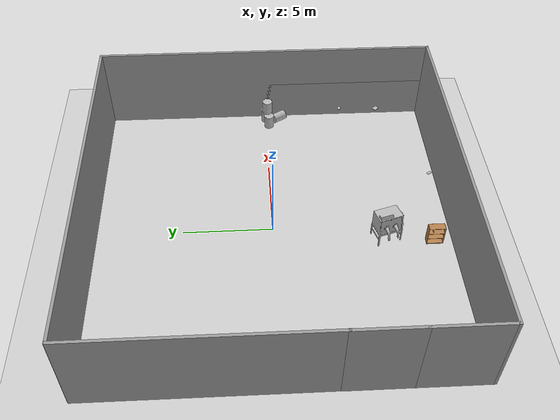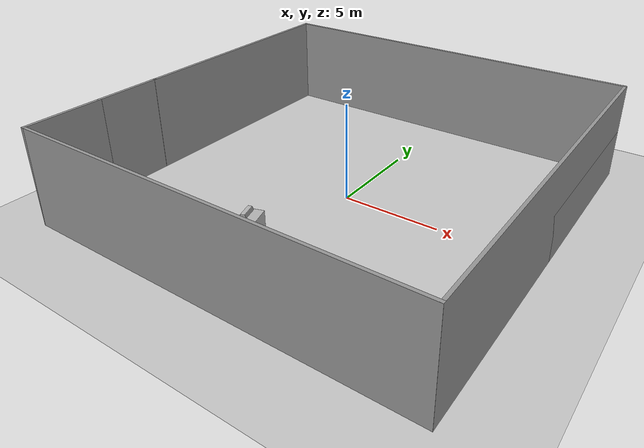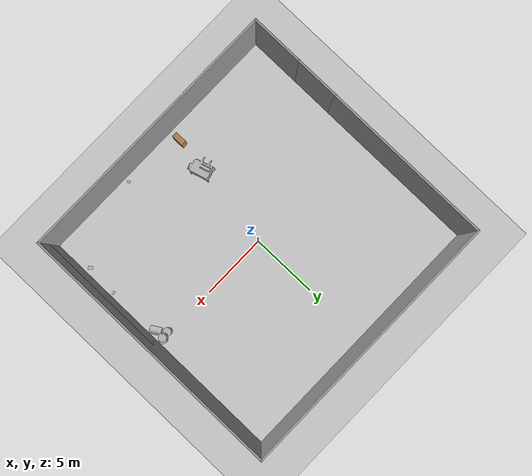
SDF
<sdf version="1.7">
 <world name="default">
  <model name="ground_plane">
   <static>1</static>
   <link name="link">
    <collision name="collision">
     <geometry><plane><normal>0 0 1</normal><size>100 100</size></plane></geometry>
     <surface><friction><ode><mu>1</mu><mu2>1</mu2></ode></friction></surface>
    </collision>
    <visual name="visual">
     <cast_shadows>0</cast_shadows>
     <geometry><plane><normal>0 0 1</normal><size>100 100</size></plane></geometry>
     <material>
      <script><uri>file://media/materials/scripts/gazebo.material</uri><name>Gazebo/Grey</name></script>
     </material>
    </visual>
    <velocity_decay><linear>0</linear><angular>0</angular></velocity_decay>
   </link>
  </model>
  <model name="bookshelf">
   <static>1</static>
   <link name="link">
    <inertial><mass>1</mass></inertial>
    <collision name="back">
     <pose>0 0.005 0.6 0 -0 0</pose>
     <geometry><box><size>0.9 0.01 1.2</size></box></geometry>
    </collision>
    <visual name="visual1">
     <pose>0 0.005 0.6 0 -0 0</pose>
     <geometry><box><size>0.9 0.01 1.2</size></box></geometry>
     <material>
      <script><uri>file://media/materials/scripts/gazebo.material</uri><name>Gazebo/Wood</name></script>
     </material>
    </visual>
    <collision name="left_side">
     <pose>0.45 -0.195 0.6 0 -0 0</pose>
     <geometry><box><size>0.02 0.4 1.2</size></box></geometry>
    </collision>
    <visual name="visual2">
     <pose>0.45 -0.195 0.6 0 -0 0</pose>
     <geometry><box><size>0.02 0.4 1.2</size></box></geometry>
     <material>
      <script><uri>file://media/materials/scripts/gazebo.material</uri><name>Gazebo/Wood</name></script>
     </material>
    </visual>
    <collision name="right_side">
     <pose>-0.45 -0.195 0.6 0 -0 0</pose>
     <geometry><box><size>0.02 0.4 1.2</size></box></geometry>
    </collision>
    <visual name="visual3">
     <pose>-0.45 -0.195 0.6 0 -0 0</pose>
     <geometry><box><size>0.02 0.4 1.2</size></box></geometry>
     <material>
      <script><uri>file://media/materials/scripts/gazebo.material</uri><name>Gazebo/Wood</name></script>
     </material>
    </visual>
    <collision name="bottom">
     <pose>0 -0.195 0.03 0 -0 0</pose>
     <geometry><box><size>0.88 0.4 0.06</size></box></geometry>
    </collision>
    <visual name="visual4">
     <pose>0 -0.195 0.03 0 -0 0</pose>
     <geometry><box><size>0.88 0.4 0.06</size></box></geometry>
     <material>
      <script><uri>file://media/materials/scripts/gazebo.material</uri><name>Gazebo/Wood</name></script>
     </material>
    </visual>
    <collision name="top">
     <pose>0 -0.195 1.19 0 -0 0</pose>
     <geometry><box><size>0.88 0.4 0.02</size></box></geometry>
    </collision>
    <visual name="visual5">
     <pose>0 -0.195 1.19 0 -0 0</pose>
     <geometry><box><size>0.88 0.4 0.02</size></box></geometry>
     <material>
      <script><uri>file://media/materials/scripts/gazebo.material</uri><name>Gazebo/Wood</name></script>
     </material>
    </visual>
    <collision name="low_shelf">
     <pose>0 -0.195 0.43 0 -0 0</pose>
     <geometry><box><size>0.88 0.4 0.02</size></box></geometry>
    </collision>
    <visual name="visual6">
     <pose>0 -0.195 0.43 0 -0 0</pose>
     <geometry><box><size>0.88 0.4 0.02</size></box></geometry>
     <material>
      <script><uri>file://media/materials/scripts/gazebo.material</uri><name>Gazebo/Wood</name></script>
     </material>
    </visual>
    <collision name="high_shelf">
     <pose>0 -0.195 0.8 0 -0 0</pose>
     <geometry><box><size>0.88 0.4 0.02</size></box></geometry>
    </collision>
    <visual name="visual7">
     <pose>0 -0.195 0.8 0 -0 0</pose>
     <geometry><box><size>0.88 0.4 0.02</size></box></geometry>
     <material>
      <script><uri>file://media/materials/scripts/gazebo.material</uri><name>Gazebo/Wood</name></script>
     </material>
    </visual>
   </link>
   <pose>-1.08243 -8.86921 0 0 0 -1.56827</pose>
  </model>
  <model name="book_19">
   <link name="cover">
    <pose>0 -0.000108 0.015405 0 -0 0</pose>
    <visual name="visual">
     <geometry><box><size>0.245 0.16 0.03</size></box></geometry>
     <material>
      <script>
       <uri>model://book_19/materials/scripts</uri>
       <uri>model://book_19/materials/textures</uri>
       <name>book_19</name>
      </script>
     </material>
    </visual>
    <collision name="collision"><geometry><box><size>0.245 0.16 0.03</size></box></geometry></collision>
   </link>
   <link name="page">
    <pose>0 0.000608 0.015405 0 -0 0</pose>
    <visual name="visual">
     <geometry><box><size>0.24502 0.15862 0.028</size></box></geometry>
     <material>
      <lighting>1</lighting>
      <ambient>1 1 1 1</ambient>
      <diffuse>1 1 1 1</diffuse>
      <specular>0.01 0.01 0.01 1</specular>
      <emissive>0 0 0 1</emissive>
      <shader type="vertex"><normal_map>__default__</normal_map></shader>
     </material>
    </visual>
    <collision name="collision"><geometry><box><size>0.245 0.16 0.03</size></box></geometry></collision>
   </link>
   <static>1</static>
   <pose>-1.32315 -8.68246 0.939077 -3.13968 -1.14225 1.56985</pose>
  </model>
  <model name="newspaper_2">
   <link name="link_0">
    <visual name="visual">
     <geometry><box><size>0.35 0.25 0.02</size></box></geometry>
     <material>
      <script>
       <uri>model://newspaper_2/materials/scripts</uri>
       <uri>model://newspaper_2/materials/textures</uri>
       <name>newspaper_2</name>
      </script>
     </material>
    </visual>
    <collision name="collision"><geometry><box><size>0.35 0.25 0.02</size></box></geometry></collision>
   </link>
   <static>1</static>
   <pose>9.42495 -7.10849 0.77593 0 0 -0.934541</pose>
  </model>
  <model name="book_18_0">
   <link name="cover">
    <pose>0 -0.000108 0.015405 0 -0 0</pose>
    <visual name="visual">
     <geometry><box><size>0.245 0.16 0.03</size></box></geometry>
     <material>
      <script>
       <uri>model://book_18/materials/scripts</uri>
       <uri>model://book_18/materials/textures</uri>
       <name>book_18</name>
      </script>
     </material>
    </visual>
    <collision name="collision"><geometry><box><size>0.245 0.16 0.03</size></box></geometry></collision>
   </link>
   <link name="page">
    <pose>0 0.000608 0.015405 0 -0 0</pose>
    <visual name="visual">
     <geometry><box><size>0.24502 0.15862 0.028</size></box></geometry>
     <material>
      <lighting>1</lighting>
      <ambient>1 1 1 1</ambient>
      <diffuse>1 1 1 1</diffuse>
      <specular>0.01 0.01 0.01 1</specular>
      <emissive>0 0 0 1</emissive>
      <shader type="vertex"><normal_map>__default__</normal_map></shader>
     </material>
    </visual>
    <collision name="collision"><geometry><box><size>0.245 0.16 0.03</size></box></geometry></collision>
   </link>
   <static>1</static>
   <pose>3.29779 -9.39066 0.764084 0 0 -1.01851</pose>
  </model>
  <model name="book_14_1">
   <link name="cover">
    <pose>0 -0.000108 0.015405 0 -0 0</pose>
    <visual name="visual">
     <geometry><box><size>0.245 0.16 0.03</size></box></geometry>
     <material>
      <script>
       <uri>model://book_14/materials/scripts</uri>
       <uri>model://book_14/materials/textures</uri>
       <name>book_14</name>
      </script>
     </material>
    </visual>
    <collision name="collision"><geometry><box><size>0.245 0.16 0.03</size></box></geometry></collision>
   </link>
   <link name="page">
    <pose>0 0.000608 0.015405 0 -0 0</pose>
    <visual name="visual">
     <geometry><box><size>0.24502 0.15862 0.028</size></box></geometry>
     <material>
      <lighting>1</lighting>
      <ambient>1 1 1 1</ambient>
      <diffuse>1 1 1 1</diffuse>
      <specular>0.01 0.01 0.01 1</specular>
      <emissive>0 0 0 1</emissive>
      <shader type="vertex"><normal_map>__default__</normal_map></shader>
     </material>
    </visual>
    <collision name="collision"><geometry><box><size>0.245 0.16 0.03</size></box></geometry></collision>
   </link>
   <static>1</static>
   <pose>9.54563 -4.75392 0.763218 0 -0 0</pose>
  </model>
  <model name="tall_wall_basic">
   <pose>-0.0251 -0.03688 0 0 -0 0</pose>
   <link name="Wall_10">
    <collision name="Wall_10_Collision">
     <geometry><box><size>4 0.15 5</size></box></geometry>
     <pose>0 0 2.5 0 -0 0</pose>
    </collision>
    <visual name="Wall_10_Visual">
     <pose>0 0 2.5 0 -0 0</pose>
     <geometry><box><size>4 0.15 5</size></box></geometry>
     <material>
      <script><uri>file://media/materials/scripts/gazebo.material</uri><name>Gazebo/Grey</name></script>
      <ambient>1 1 1 1</ambient>
     </material>
     <meta><layer>0</layer></meta>
    </visual>
    <pose>-10.0575 -7.985 0 0 -0 -1.5708</pose>
   </link>
   <link name="Wall_11">
    <collision name="Wall_11_Collision">
     <geometry><box><size>20.25 0.15 5</size></box></geometry>
     <pose>0 0 2.5 0 -0 0</pose>
    </collision>
    <visual name="Wall_11_Visual">
     <pose>0 0 2.5 0 -0 0</pose>
     <geometry><box><size>20.25 0.15 5</size></box></geometry>
     <material>
      <script><uri>file://media/materials/scripts/gazebo.material</uri><name>Gazebo/Grey</name></script>
      <ambient>1 1 1 1</ambient>
     </material>
     <meta><layer>0</layer></meta>
    </visual>
    <pose>-0.007528 -9.91 0 0 -0 0</pose>
   </link>
   <link name="Wall_13">
    <collision name="Wall_13_Collision">
     <geometry><box><size>19.9699 0.15 2.5</size></box></geometry>
     <pose>0 0 1.25 0 -0 0</pose>
    </collision>
    <visual name="Wall_13_Visual">
     <pose>0 0 1.25 0 -0 0</pose>
     <geometry><box><size>19.9699 0.15 2.5</size></box></geometry>
     <material>
      <script><uri>file://media/materials/scripts/gazebo.material</uri><name>Gazebo/Grey</name></script>
      <ambient>1 1 1 1</ambient>
     </material>
     <meta><layer>0</layer></meta>
    </visual>
    <pose>10.05 -0 0 0 -0 1.57004</pose>
   </link>
   <link name="Wall_14">
    <collision name="Wall_14_Collision">
     <geometry><box><size>19.9699 0.15 5</size></box></geometry>
     <pose>0 0 2.5 0 -0 0</pose>
    </collision>
    <visual name="Wall_14_Visual">
     <pose>0 0 2.5 0 -0 0</pose>
     <geometry><box><size>19.9699 0.15 5</size></box></geometry>
     <material>
      <script><uri>file://media/materials/scripts/gazebo.material</uri><name>Gazebo/Grey</name></script>
      <ambient>1 1 1 1</ambient>
     </material>
     <meta><layer>0</layer></meta>
    </visual>
    <pose>10.05 -0 0 0 -0 -1.57155</pose>
   </link>
   <link name="Wall_17">
    <collision name="Wall_17_Collision">
     <geometry><box><size>20.2348 0.15 5</size></box></geometry>
     <pose>0 0 2.5 0 -0 0</pose>
    </collision>
    <visual name="Wall_17_Visual">
     <pose>0 0 2.5 0 -0 0</pose>
     <geometry><box><size>20.2348 0.15 5</size></box></geometry>
     <material>
      <script><uri>file://media/materials/scripts/gazebo.material</uri><name>Gazebo/Grey</name></script>
      <ambient>1 1 1 1</ambient>
     </material>
     <meta><layer>0</layer></meta>
    </visual>
    <pose>0.014972 9.91 0 0 -0 3.14159</pose>
   </link>
   <link name="Wall_19">
    <collision name="Wall_19_Collision">
     <geometry><box><size>12.75 0.15 5</size></box></geometry>
     <pose>0 0 2.5 0 -0 0</pose>
    </collision>
    <visual name="Wall_19_Visual">
     <pose>0 0 2.5 0 -0 0</pose>
     <geometry><box><size>12.75 0.15 5</size></box></geometry>
     <material>
      <script><uri>file://media/materials/scripts/gazebo.material</uri><name>Gazebo/Grey</name></script>
      <ambient>1 1 1 1</ambient>
     </material>
     <meta><layer>0</layer></meta>
    </visual>
    <pose>-10.0475 3.587 0 0 -0 1.5708</pose>
   </link>
   <link name="Wall_6">
    <collision name="Wall_6_Collision">
     <geometry><box><size>3.5 0.15 5</size></box></geometry>
     <pose>0 0 2.5 0 -0 0</pose>
    </collision>
    <visual name="Wall_6_Visual">
     <pose>0 0 2.5 0 -0 0</pose>
     <geometry><box><size>3.5 0.15 5</size></box></geometry>
     <material>
      <script><uri>file://media/materials/scripts/gazebo.material</uri><name>Gazebo/Grey</name></script>
      <ambient>1 1 1 1</ambient>
     </material>
     <meta><layer>0</layer></meta>
    </visual>
    <pose>-10.0575 -4.385 0 0 -0 -1.5708</pose>
   </link>
   <static>1</static>
  </model>
  <model name="glovebox_clone_clone_0">
   <static>0</static>
   <link name="link">
    <visual name="visual">
     <geometry><mesh><uri>model://glovebox/meshes/glovebox.obj</uri></mesh></geometry>
    </visual>
    <collision name="collision">
     <geometry><mesh><uri>model://glovebox/meshes/glovebox.obj</uri></mesh></geometry>
    </collision>
    <inertial>
     <inertia><ixx>1</ixx><ixy>0</ixy><ixz>0</ixz><iyy>1</iyy><iyz>0</iyz><izz>1</izz></inertia>
     <mass>1</mass>
    </inertial>
   </link>
   <pose>-0.831409 -6.23139 0.022423 1.57079 1e-06 -1.27866</pose>
  </model>
  <model name="toxic_barrel_clone">
   <static>0</static>
   <link name="link">
    <visual name="visual">
     <geometry><mesh><uri>model://toxic_barrel/meshes/barrel_red.obj</uri></mesh></geometry>
    </visual>
    <collision name="collision">
     <geometry><mesh><uri>model://toxic_barrel/meshes/barrel_red.obj</uri></mesh></geometry>
    </collision>
    <inertial>
     <inertia><ixx>1</ixx><ixy>0</ixy><ixz>0</ixz><iyy>1</iyy><iyz>0</iyz><izz>1</izz></inertia>
     <mass>1</mass>
    </inertial>
   </link>
   <pose>9.51301 -0.039399 0.439233 1.5708 -5e-06 0.664323</pose>
  </model>
  <model name="toxic_barrel_clone_clone">
   <static>0</static>
   <link name="link">
    <visual name="visual">
     <geometry><mesh><uri>model://toxic_barrel/meshes/barrel_red.obj</uri></mesh></geometry>
    </visual>
    <collision name="collision">
     <geometry><mesh><uri>model://toxic_barrel/meshes/barrel_red.obj</uri></mesh></geometry>
    </collision>
    <inertial>
     <inertia><ixx>1</ixx><ixy>0</ixy><ixz>0</ixz><iyy>1</iyy><iyz>0</iyz><izz>1</izz></inertia>
     <mass>1</mass>
    </inertial>
   </link>
   <pose>9.45001 -0.851529 0.318438 -1e-06 0.196378 0.539957</pose>
  </model>
  <model name="toxic_barrel_clone_clone_0">
   <static>0</static>
   <link name="link">
    <visual name="visual">
     <geometry><mesh><uri>model://toxic_barrel/meshes/barrel_red.obj</uri></mesh></geometry>
    </visual>
    <collision name="collision">
     <geometry><mesh><uri>model://toxic_barrel/meshes/barrel_red.obj</uri></mesh></geometry>
    </collision>
    <inertial>
     <inertia><ixx>1</ixx><ixy>0</ixy><ixz>0</ixz><iyy>1</iyy><iyz>0</iyz><izz>1</izz></inertia>
     <mass>1</mass>
    </inertial>
   </link>
   <pose>8.91954 -0.1916 0.439184 1.57079 2e-06 -0.716034</pose>
  </model>
  <model name="toxic_barrel_clone_clone_0_clone">
   <static>0</static>
   <link name="link">
    <visual name="visual">
     <geometry><mesh><uri>model://toxic_barrel/meshes/barrel_red.obj</uri></mesh></geometry>
    </visual>
    <collision name="collision">
     <geometry><mesh><uri>model://toxic_barrel/meshes/barrel_red.obj</uri></mesh></geometry>
    </collision>
    <inertial>
     <inertia><ixx>1</ixx><ixy>0</ixy><ixz>0</ixz><iyy>1</iyy><iyz>0</iyz><izz>1</izz></inertia>
     <mass>1</mass>
    </inertial>
   </link>
   <pose>9.31316 -0.111407 1.27048 1.57114 0.000728 0.795619</pose>
  </model>
 </world>
</sdf>
